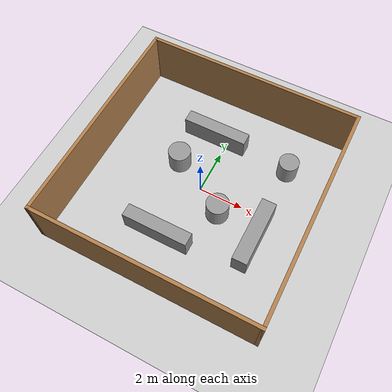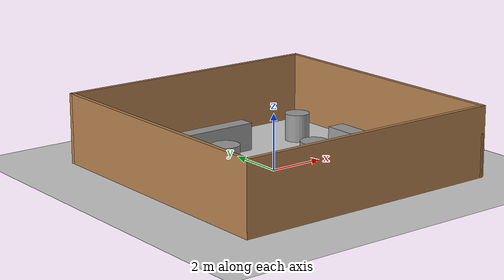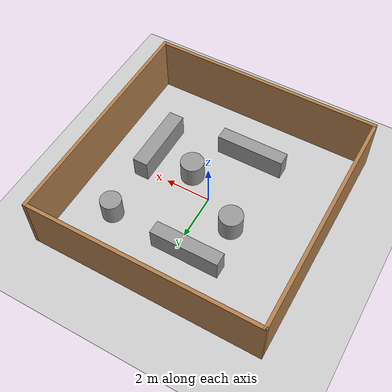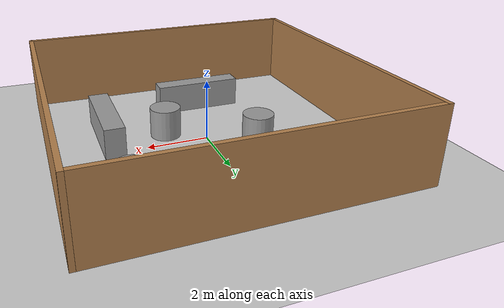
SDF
<sdf version="1.7">
 <world name="default">
  <plugin name="gazebo_ros_state" filename="libgazebo_ros_state.so">
   <ros><namespace>/gazebo</namespace></ros>
   <update_rate>20</update_rate>
  </plugin>
  <light name="sun" type="directional">
   <pose>0 0 10 0 -0 0</pose>
   <diffuse>0.8 0.8 0.8 1</diffuse>
   <specular>0.2 0.2 0.2 1</specular>
   <attenuation>
    <range>1000</range>
    <constant>0.9</constant>
    <linear>0.01</linear>
    <quadratic>0.001</quadratic>
   </attenuation>
   <direction>-0.5 0.1 -0.9</direction>
   <spot><inner_angle>0</inner_angle><outer_angle>0</outer_angle><falloff>0</falloff></spot>
  </light>
  <model name="ground_plane">
   <static>1</static>
   <link name="link">
    <collision name="collision">
     <geometry><plane><normal>0 0 1</normal><size>100 100</size></plane></geometry>
     <surface><friction><ode><mu>100</mu><mu2>50</mu2></ode></friction></surface>
    </collision>
    <visual name="visual">
     <cast_shadows>0</cast_shadows>
     <geometry><plane><normal>0 0 1</normal><size>100 100</size></plane></geometry>
     <material>
      <script><uri>file://media/materials/scripts/gazebo.material</uri><name>Gazebo/Grey</name></script>
     </material>
    </visual>
   </link>
  </model>
  <gravity>0 0 -9.8</gravity>
  <magnetic_field>6e-06 2.3e-05 -4.2e-05</magnetic_field>
  <atmosphere type="adiabatic"/>
  <physics type="ode">
   <max_step_size>0.001</max_step_size>
   <real_time_factor>1</real_time_factor>
   <real_time_update_rate>1000</real_time_update_rate>
  </physics>
  <scene><ambient>0.4 0.4 0.4 1</ambient><background>0.7 0.7 0.7 1</background><shadows>1</shadows></scene>
  <audio><device>default</device></audio>
  <spherical_coordinates>
   <surface_model>EARTH_WGS84</surface_model>
   <latitude_deg>0</latitude_deg>
   <longitude_deg>0</longitude_deg>
   <elevation>0</elevation>
   <heading_deg>0</heading_deg>
  </spherical_coordinates>
  <model name="room">
   <pose>0.037667 0.015625 0 0 -0 0</pose>
   <link name="Wall_0">
    <collision name="Wall_0_Collision">
     <geometry><box><size>10 0.15 2.5</size></box></geometry>
     <pose>0 0 1.25 0 -0 0</pose>
    </collision>
    <visual name="Wall_0_Visual">
     <pose>0 0 1.25 0 -0 0</pose>
     <geometry><box><size>10 0.15 2.5</size></box></geometry>
     <material>
      <script><uri>file://media/materials/scripts/gazebo.material</uri><name>Gazebo/Wood</name></script>
      <ambient>1 1 1 1</ambient>
     </material>
     <meta><layer>0</layer></meta>
    </visual>
    <pose>0 -4.925 0 0 -0 0</pose>
   </link>
   <link name="Wall_2">
    <collision name="Wall_2_Collision">
     <geometry><box><size>10 0.15 2.5</size></box></geometry>
     <pose>0 0 1.25 0 -0 0</pose>
    </collision>
    <visual name="Wall_2_Visual">
     <pose>0 0 1.25 0 -0 0</pose>
     <geometry><box><size>10 0.15 2.5</size></box></geometry>
     <material>
      <script><uri>file://media/materials/scripts/gazebo.material</uri><name>Gazebo/Wood</name></script>
      <ambient>1 1 1 1</ambient>
     </material>
     <meta><layer>0</layer></meta>
    </visual>
    <pose>4.925 0 0 0 -0 1.5708</pose>
   </link>
   <link name="Wall_4">
    <collision name="Wall_4_Collision">
     <geometry><box><size>10 0.15 2.5</size></box></geometry>
     <pose>0 0 1.25 0 -0 0</pose>
    </collision>
    <visual name="Wall_4_Visual">
     <pose>0 0 1.25 0 -0 0</pose>
     <geometry><box><size>10 0.15 2.5</size></box></geometry>
     <material>
      <script><uri>file://media/materials/scripts/gazebo.material</uri><name>Gazebo/Wood</name></script>
      <ambient>1 1 1 1</ambient>
     </material>
     <meta><layer>0</layer></meta>
    </visual>
    <pose>0 4.925 0 0 -0 3.14159</pose>
   </link>
   <link name="Wall_5">
    <collision name="Wall_5_Collision">
     <geometry><box><size>10 0.15 2.5</size></box></geometry>
     <pose>0 0 1.25 0 -0 0</pose>
    </collision>
    <visual name="Wall_5_Visual">
     <pose>0 0 1.25 0 -0 0</pose>
     <geometry><box><size>10 0.15 2.5</size></box></geometry>
     <material>
      <script><uri>file://media/materials/scripts/gazebo.material</uri><name>Gazebo/Wood</name></script>
      <ambient>1 1 1 1</ambient>
     </material>
     <meta><layer>0</layer></meta>
    </visual>
    <pose>-4.925 0 0 0 -0 -1.5708</pose>
   </link>
   <static>1</static>
  </model>
  <model name="unit_box">
   <pose>-0.561706 2.70952 0.499838 -0 0.00011 0.000186</pose>
   <link name="link">
    <inertial>
     <mass>1</mass>
     <inertia>
      <ixx>0.166667</ixx>
      <ixy>0</ixy>
      <ixz>0</ixz>
      <iyy>0.166667</iyy>
      <iyz>0</iyz>
      <izz>0.166667</izz>
     </inertia>
    </inertial>
    <collision name="collision"><geometry><box><size>2.95641 0.573874 1</size></box></geometry></collision>
    <visual name="visual">
     <geometry><box><size>2.95641 0.573874 1</size></box></geometry>
     <material>
      <script><name>Gazebo/Grey</name><uri>file://media/materials/scripts/gazebo.material</uri></script>
     </material>
    </visual>
   </link>
   <static>1</static>
  </model>
  <model name="unit_cylinder">
   <pose>3.05717 2.49207 0.499998 3e-06 -2e-06 0</pose>
   <link name="link">
    <inertial>
     <mass>1</mass>
     <inertia><ixx>0.145833</ixx><ixy>0</ixy><ixz>0</ixz><iyy>0.145833</iyy><iyz>0</iyz><izz>0.125</izz></inertia>
    </inertial>
    <collision name="collision">
     <geometry><cylinder><radius>0.444736</radius><length>1</length></cylinder></geometry>
    </collision>
    <visual name="visual">
     <geometry><cylinder><radius>0.444736</radius><length>1</length></cylinder></geometry>
     <material>
      <script><name>Gazebo/Grey</name><uri>file://media/materials/scripts/gazebo.material</uri></script>
     </material>
    </visual>
   </link>
   <static>1</static>
  </model>
  <model name="unit_box_clone">
   <pose>-0.595484 -2.71506 0.499838 0 -0.00011 -0.000134</pose>
   <link name="link">
    <inertial>
     <mass>1</mass>
     <inertia>
      <ixx>0.166667</ixx>
      <ixy>0</ixy>
      <ixz>0</ixz>
      <iyy>0.166667</iyy>
      <iyz>0</iyz>
      <izz>0.166667</izz>
     </inertia>
    </inertial>
    <collision name="collision"><geometry><box><size>2.95641 0.578811 1</size></box></geometry></collision>
    <visual name="visual">
     <geometry><box><size>2.95641 0.578811 1</size></box></geometry>
     <material>
      <script><name>Gazebo/Grey</name><uri>file://media/materials/scripts/gazebo.material</uri></script>
     </material>
    </visual>
   </link>
   <static>1</static>
  </model>
  <model name="unit_box_clone_0">
   <pose>3.06186 -1.13382 0.499838 0 0.00011 -1.57102</pose>
   <link name="link">
    <inertial>
     <mass>1</mass>
     <inertia>
      <ixx>0.166667</ixx>
      <ixy>0</ixy>
      <ixz>0</ixz>
      <iyy>0.166667</iyy>
      <iyz>0</iyz>
      <izz>0.166667</izz>
     </inertia>
    </inertial>
    <collision name="collision"><geometry><box><size>2.95641 0.657137 1</size></box></geometry></collision>
    <visual name="visual">
     <geometry><box><size>2.95641 0.657137 1</size></box></geometry>
     <material>
      <script><name>Gazebo/Grey</name><uri>file://media/materials/scripts/gazebo.material</uri></script>
     </material>
    </visual>
   </link>
   <static>1</static>
  </model>
  <model name="unit_cylinder_0">
   <pose>-1.45606 0.79998 0.499993 -3e-06 4e-06 0</pose>
   <link name="link">
    <inertial>
     <mass>1</mass>
     <inertia><ixx>0.145833</ixx><ixy>0</ixy><ixz>0</ixz><iyy>0.145833</iyy><iyz>0</iyz><izz>0.125</izz></inertia>
    </inertial>
    <collision name="collision">
     <geometry><cylinder><radius>0.5</radius><length>1</length></cylinder></geometry>
    </collision>
    <visual name="visual">
     <geometry><cylinder><radius>0.5</radius><length>1</length></cylinder></geometry>
     <material>
      <script><name>Gazebo/Grey</name><uri>file://media/materials/scripts/gazebo.material</uri></script>
     </material>
    </visual>
   </link>
   <static>1</static>
  </model>
  <model name="unit_cylinder_1">
   <pose>1.18442 -0.735576 0.499998 3e-06 -4e-06 0</pose>
   <link name="link">
    <inertial>
     <mass>1</mass>
     <inertia><ixx>0.145833</ixx><ixy>0</ixy><ixz>0</ixz><iyy>0.145833</iyy><iyz>0</iyz><izz>0.125</izz></inertia>
    </inertial>
    <collision name="collision">
     <geometry><cylinder><radius>0.5</radius><length>1</length></cylinder></geometry>
    </collision>
    <visual name="visual">
     <geometry><cylinder><radius>0.5</radius><length>1</length></cylinder></geometry>
     <material>
      <script><name>Gazebo/Grey</name><uri>file://media/materials/scripts/gazebo.material</uri></script>
     </material>
    </visual>
   </link>
   <static>1</static>
  </model>
 </world>
</sdf>
